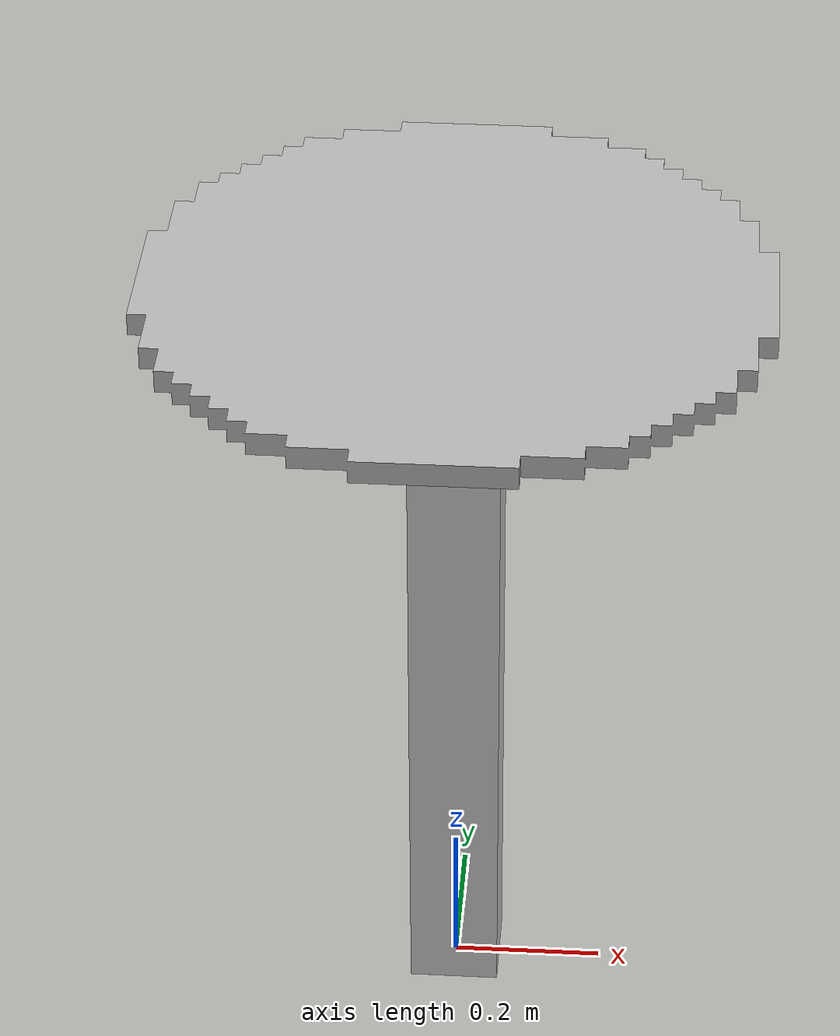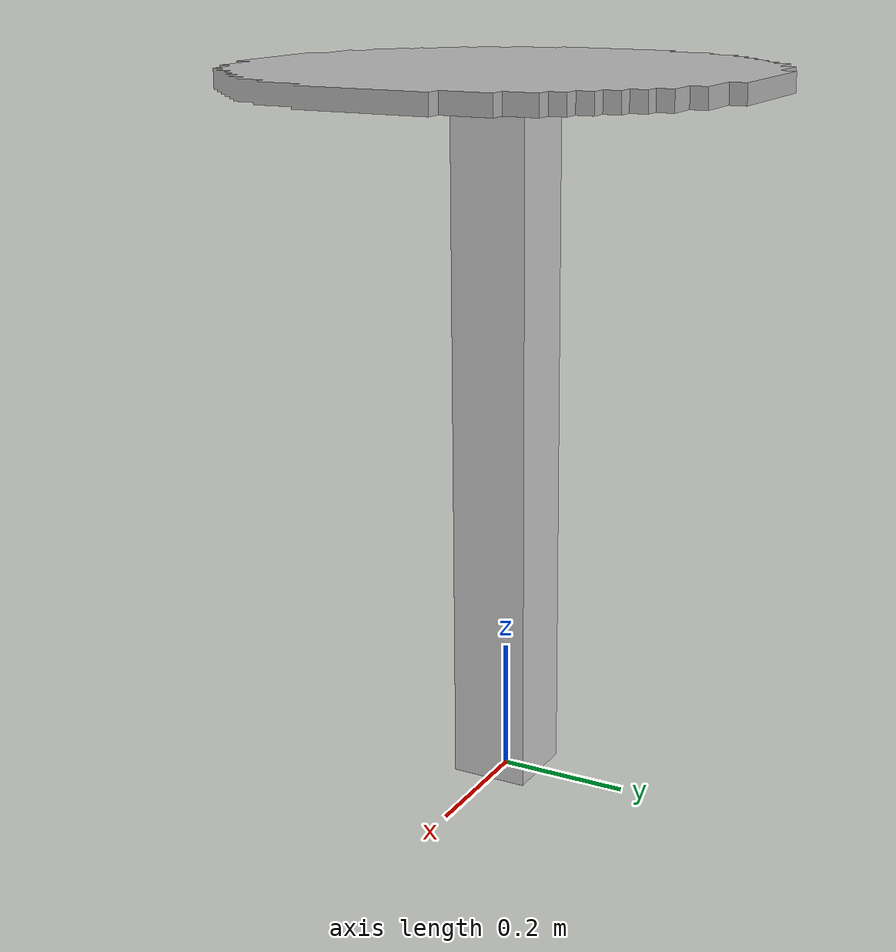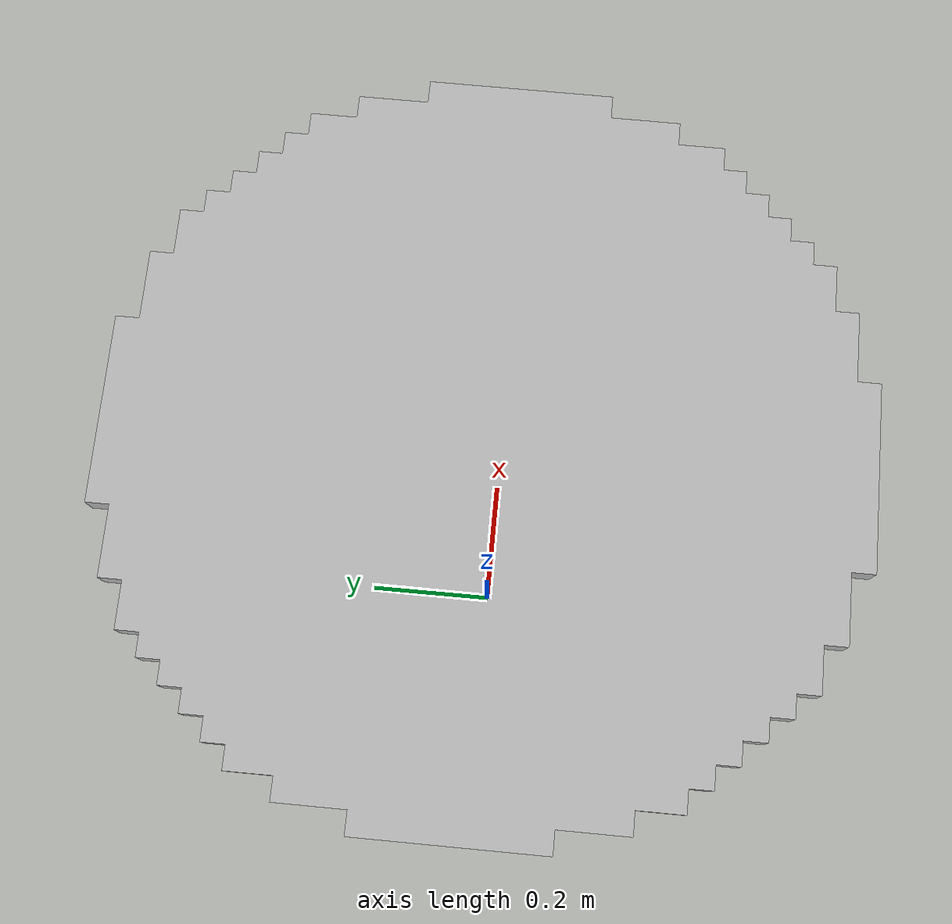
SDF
<?xml version="1.0"?>
<sdf version="1.6">
  <world name="rgo2015/bar_table">
    <light name="sun" type="directional">
      <direction>0.5 0.1 -0.9</direction>
      <pose>0 0 10 0 0 0</pose>
      <specular>0.2 0.2 0.2 1</specular>
      <cast_shadows>true</cast_shadows>
      <diffuse>0.8 0.8 0.8 1</diffuse>
      <attenuation>
        <range>1000</range>
        <quadratic>0.001</quadratic>
        <constant>0.9</constant>
        <linear>0.01</linear>
      </attenuation>
    </light>
    <include>
      <pose>0 0 1.07 0 0 0</pose>
      <name>top</name>
      <uri>model://rgo2015/bar_table/top</uri>
    </include>
    <include>
      <pose>0 0 0 0 0 0</pose>
      <name>legs</name>
      <uri>model://rgo2015/bar_table/legs</uri>
    </include>
    <physics type="ode">
      <real_time_update_rate>333.0</real_time_update_rate>
      <max_step_size>0.003</max_step_size>
      <ode>
        <constraints>
          <cfm>0.0001</cfm>
        </constraints>
        <solver>
          <type>quick</type>
          <iters>100</iters>
        </solver>
      </ode>
    </physics>
  </world>
</sdf>

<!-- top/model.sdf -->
<sdf version="1.6">
  <model name="rgo2015/bar_table/top">
    <link name="1_link">
      <collision name="1_col">
        <geometry>
          <mesh>
            <uri>model://rgo2015/bar_table/top/shape/top.stl</uri>
          </mesh>
        </geometry>
      </collision>
      <visual name="1_vis">
        <geometry>
          <mesh>
            <uri>model://rgo2015/bar_table/top/shape/top.stl</uri>
          </mesh>
        </geometry>
      </visual>
      <pose>0 0 0 0 0 0</pose>
    </link>
    <static>true</static>
  </model>
</sdf>

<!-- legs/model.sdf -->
<sdf version="1.6">
  <model name="rgo2015/bar_table/legs">
    <link name="1_link">
      <collision name="1_col">
        <geometry>
          <box>
            <size>0.12 0.12 1.09</size>
          </box>
        </geometry>
      </collision>
      <visual name="1_vis">
        <geometry>
          <box>
            <size>0.12 0.12 1.09</size>
          </box>
        </geometry>
        <material>
          <ambient>0.8 0.8 0.8 1</ambient>
        </material>
      </visual>
      <pose>-0.0 0.0 0.545 0 0 0</pose>
    </link>
    <static>true</static>
  </model>
</sdf>
